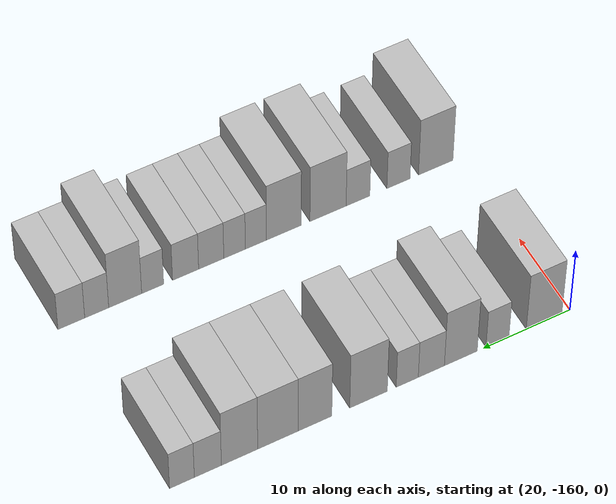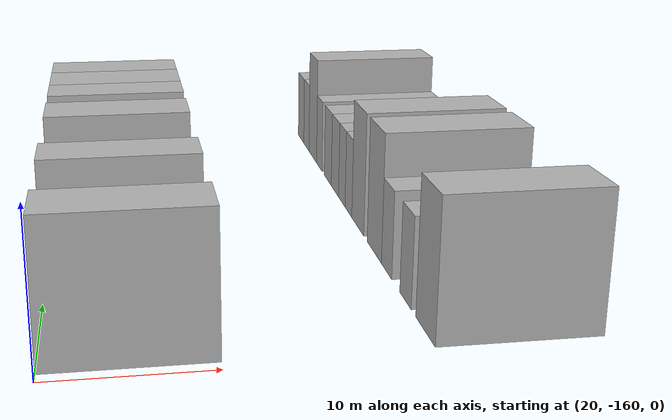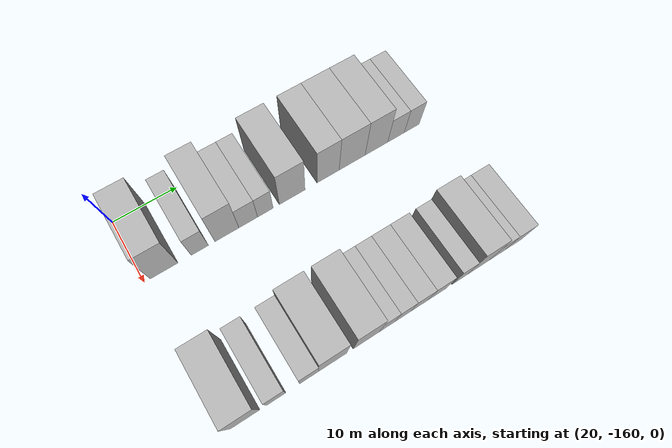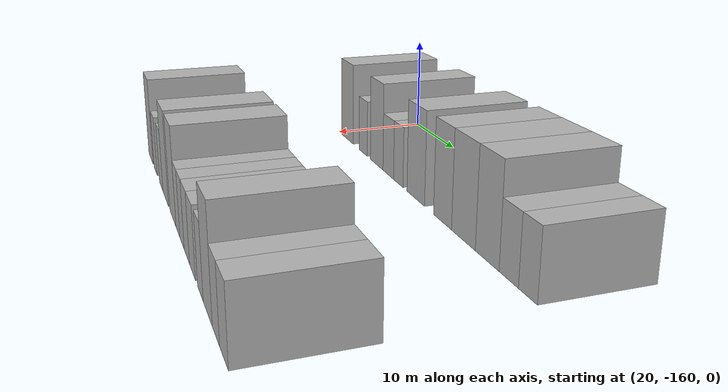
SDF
<sdf version="1.6">
 <world name="default">
  <model name="building_13">
   <static>1</static>
   <pose>25.0000 -157.0162 0 0.000000 0.000000 0.000000</pose>
   <link name="link">
    <pose>0 0 4.50 0 0 0</pose>
    <collision name="collision"><geometry><box><size>10.0000 4.1309 9.0000</size></box></geometry></collision>
    <visual name="visual">
     <cast_shadows>0</cast_shadows>
     <geometry><box><size>10.0000 4.1309 9.0000</size></box></geometry>
     <material>
      <script>
       <uri>model://HANNAS_wall/materials/scripts</uri>
       <uri>model://HANNAS_wall/materials/textures</uri>
       <name>vrc/HANNAS_wall</name>
      </script>
     </material>
    </visual>
   </link>
  </model>
  <model name="building_14">
   <static>1</static>
   <pose>25.0000 -151.6285 0 0.000000 0.000000 0.000000</pose>
   <link name="link">
    <pose>0 0 3.00 0 0 0</pose>
    <collision name="collision"><geometry><box><size>10.0000 2.6447 6.0000</size></box></geometry></collision>
    <visual name="visual">
     <cast_shadows>0</cast_shadows>
     <geometry><box><size>10.0000 2.6447 6.0000</size></box></geometry>
     <material>
      <script>
       <uri>model://HANNAS_wall/materials/scripts</uri>
       <uri>model://HANNAS_wall/materials/textures</uri>
       <name>vrc/HANNAS_wall</name>
      </script>
     </material>
    </visual>
   </link>
  </model>
  <model name="building_15">
   <static>1</static>
   <pose>25.0000 -147.4297 0 0.000000 0.000000 0.000000</pose>
   <link name="link">
    <pose>0 0 4.50 0 0 0</pose>
    <collision name="collision"><geometry><box><size>10.0000 3.7528 9.0000</size></box></geometry></collision>
    <visual name="visual">
     <cast_shadows>0</cast_shadows>
     <geometry><box><size>10.0000 3.7528 9.0000</size></box></geometry>
     <material>
      <script>
       <uri>model://HANNAS_wall/materials/scripts</uri>
       <uri>model://HANNAS_wall/materials/textures</uri>
       <name>vrc/HANNAS_wall</name>
      </script>
     </material>
    </visual>
   </link>
  </model>
  <model name="building_16">
   <static>1</static>
   <pose>25.0000 -144.0700 0 0.000000 0.000000 0.000000</pose>
   <link name="link">
    <pose>0 0 3.00 0 0 0</pose>
    <collision name="collision"><geometry><box><size>10.0000 2.9665 6.0000</size></box></geometry></collision>
    <visual name="visual">
     <cast_shadows>0</cast_shadows>
     <geometry><box><size>10.0000 2.9665 6.0000</size></box></geometry>
     <material>
      <script>
       <uri>model://HANNAS_wall/materials/scripts</uri>
       <uri>model://HANNAS_wall/materials/textures</uri>
       <name>vrc/HANNAS_wall</name>
      </script>
     </material>
    </visual>
   </link>
  </model>
  <model name="building_17">
   <static>1</static>
   <pose>25.0000 -141.3345 0 0.000000 0.000000 0.000000</pose>
   <link name="link">
    <pose>0 0 3.00 0 0 0</pose>
    <collision name="collision"><geometry><box><size>10.0000 2.5046 6.0000</size></box></geometry></collision>
    <visual name="visual">
     <cast_shadows>0</cast_shadows>
     <geometry><box><size>10.0000 2.5046 6.0000</size></box></geometry>
     <material>
      <script>
       <uri>model://HANNAS_wall/materials/scripts</uri>
       <uri>model://HANNAS_wall/materials/textures</uri>
       <name>vrc/HANNAS_wall</name>
      </script>
     </material>
    </visual>
   </link>
  </model>
  <model name="building_18">
   <static>1</static>
   <pose>25.0000 -136.9713 0 0.000000 0.000000 0.000000</pose>
   <link name="link">
    <pose>0 0 4.50 0 0 0</pose>
    <collision name="collision"><geometry><box><size>10.0000 4.2218 9.0000</size></box></geometry></collision>
    <visual name="visual">
     <cast_shadows>0</cast_shadows>
     <geometry><box><size>10.0000 4.2218 9.0000</size></box></geometry>
     <material>
      <script>
       <uri>model://HANNAS_wall/materials/scripts</uri>
       <uri>model://HANNAS_wall/materials/textures</uri>
       <name>vrc/HANNAS_wall</name>
      </script>
     </material>
    </visual>
   </link>
  </model>
  <model name="building_19">
   <static>1</static>
   <pose>25.0000 -130.9918 0 0.000000 0.000000 0.000000</pose>
   <link name="link">
    <pose>0 0 4.50 0 0 0</pose>
    <collision name="collision"><geometry><box><size>10.0000 3.7371 9.0000</size></box></geometry></collision>
    <visual name="visual">
     <cast_shadows>0</cast_shadows>
     <geometry><box><size>10.0000 3.7371 9.0000</size></box></geometry>
     <material>
      <script>
       <uri>model://HANNAS_wall/materials/scripts</uri>
       <uri>model://HANNAS_wall/materials/textures</uri>
       <name>vrc/HANNAS_wall</name>
      </script>
     </material>
    </visual>
   </link>
  </model>
  <model name="building_20">
   <static>1</static>
   <pose>25.0000 -126.8824 0 0.000000 0.000000 0.000000</pose>
   <link name="link">
    <pose>0 0 4.50 0 0 0</pose>
    <collision name="collision"><geometry><box><size>10.0000 4.4817 9.0000</size></box></geometry></collision>
    <visual name="visual">
     <cast_shadows>0</cast_shadows>
     <geometry><box><size>10.0000 4.4817 9.0000</size></box></geometry>
     <material>
      <script>
       <uri>model://HANNAS_wall/materials/scripts</uri>
       <uri>model://HANNAS_wall/materials/textures</uri>
       <name>vrc/HANNAS_wall</name>
      </script>
     </material>
    </visual>
   </link>
  </model>
  <model name="building_21">
   <static>1</static>
   <pose>25.0000 -122.6475 0 0.000000 0.000000 0.000000</pose>
   <link name="link">
    <pose>0 0 4.50 0 0 0</pose>
    <collision name="collision"><geometry><box><size>10.0000 3.9882 9.0000</size></box></geometry></collision>
    <visual name="visual">
     <cast_shadows>0</cast_shadows>
     <geometry><box><size>10.0000 3.9882 9.0000</size></box></geometry>
     <material>
      <script>
       <uri>model://HANNAS_wall/materials/scripts</uri>
       <uri>model://HANNAS_wall/materials/textures</uri>
       <name>vrc/HANNAS_wall</name>
      </script>
     </material>
    </visual>
   </link>
  </model>
  <model name="building_22">
   <static>1</static>
   <pose>25.0000 -119.1737 0 0.000000 0.000000 0.000000</pose>
   <link name="link">
    <pose>0 0 3.00 0 0 0</pose>
    <collision name="collision"><geometry><box><size>10.0000 2.9594 6.0000</size></box></geometry></collision>
    <visual name="visual">
     <cast_shadows>0</cast_shadows>
     <geometry><box><size>10.0000 2.9594 6.0000</size></box></geometry>
     <material>
      <script>
       <uri>model://HANNAS_wall/materials/scripts</uri>
       <uri>model://HANNAS_wall/materials/textures</uri>
       <name>vrc/HANNAS_wall</name>
      </script>
     </material>
    </visual>
   </link>
  </model>
  <model name="building_23">
   <static>1</static>
   <pose>25.0000 -116.3464 0 0.000000 0.000000 0.000000</pose>
   <link name="link">
    <pose>0 0 3.00 0 0 0</pose>
    <collision name="collision"><geometry><box><size>10.0000 2.6951 6.0000</size></box></geometry></collision>
    <visual name="visual">
     <cast_shadows>0</cast_shadows>
     <geometry><box><size>10.0000 2.6951 6.0000</size></box></geometry>
     <material>
      <script>
       <uri>model://HANNAS_wall/materials/scripts</uri>
       <uri>model://HANNAS_wall/materials/textures</uri>
       <name>vrc/HANNAS_wall</name>
      </script>
     </material>
    </visual>
   </link>
  </model>
  <model name="building_111">
   <static>1</static>
   <pose>47.0000 -157.0116 0 0.000000 0.000000 0.000000</pose>
   <link name="link">
    <pose>0 0 4.50 0 0 0</pose>
    <collision name="collision"><geometry><box><size>10.0000 4.0821 9.0000</size></box></geometry></collision>
    <visual name="visual">
     <cast_shadows>0</cast_shadows>
     <geometry><box><size>10.0000 4.0821 9.0000</size></box></geometry>
     <material>
      <script>
       <uri>model://HANNAS_wall/materials/scripts</uri>
       <uri>model://HANNAS_wall/materials/textures</uri>
       <name>vrc/HANNAS_wall</name>
      </script>
     </material>
    </visual>
   </link>
  </model>
  <model name="building_112">
   <static>1</static>
   <pose>47.0000 -152.6086 0 0.000000 0.000000 0.000000</pose>
   <link name="link">
    <pose>0 0 3.00 0 0 0</pose>
    <collision name="collision"><geometry><box><size>10.0000 2.7238 6.0000</size></box></geometry></collision>
    <visual name="visual">
     <cast_shadows>0</cast_shadows>
     <geometry><box><size>10.0000 2.7238 6.0000</size></box></geometry>
     <material>
      <script>
       <uri>model://HANNAS_wall/materials/scripts</uri>
       <uri>model://HANNAS_wall/materials/textures</uri>
       <name>vrc/HANNAS_wall</name>
      </script>
     </material>
    </visual>
   </link>
  </model>
  <model name="building_113">
   <static>1</static>
   <pose>47.0000 -147.8594 0 0.000000 0.000000 0.000000</pose>
   <link name="link">
    <pose>0 0 3.00 0 0 0</pose>
    <collision name="collision"><geometry><box><size>10.0000 2.7747 6.0000</size></box></geometry></collision>
    <visual name="visual">
     <cast_shadows>0</cast_shadows>
     <geometry><box><size>10.0000 2.7747 6.0000</size></box></geometry>
     <material>
      <script>
       <uri>model://HANNAS_wall/materials/scripts</uri>
       <uri>model://HANNAS_wall/materials/textures</uri>
       <name>vrc/HANNAS_wall</name>
      </script>
     </material>
    </visual>
   </link>
  </model>
  <model name="building_114">
   <static>1</static>
   <pose>47.0000 -144.3681 0 0.000000 0.000000 0.000000</pose>
   <link name="link">
    <pose>0 0 4.50 0 0 0</pose>
    <collision name="collision"><geometry><box><size>10.0000 4.2079 9.0000</size></box></geometry></collision>
    <visual name="visual">
     <cast_shadows>0</cast_shadows>
     <geometry><box><size>10.0000 4.2079 9.0000</size></box></geometry>
     <material>
      <script>
       <uri>model://HANNAS_wall/materials/scripts</uri>
       <uri>model://HANNAS_wall/materials/textures</uri>
       <name>vrc/HANNAS_wall</name>
      </script>
     </material>
    </visual>
   </link>
  </model>
  <model name="building_115">
   <static>1</static>
   <pose>47.0000 -139.2565 0 0.000000 0.000000 0.000000</pose>
   <link name="link">
    <pose>0 0 4.50 0 0 0</pose>
    <collision name="collision"><geometry><box><size>10.0000 4.0152 9.0000</size></box></geometry></collision>
    <visual name="visual">
     <cast_shadows>0</cast_shadows>
     <geometry><box><size>10.0000 4.0152 9.0000</size></box></geometry>
     <material>
      <script>
       <uri>model://HANNAS_wall/materials/scripts</uri>
       <uri>model://HANNAS_wall/materials/textures</uri>
       <name>vrc/HANNAS_wall</name>
      </script>
     </material>
    </visual>
   </link>
  </model>
  <model name="building_116">
   <static>1</static>
   <pose>47.0000 -136.0410 0 0.000000 0.000000 0.000000</pose>
   <link name="link">
    <pose>0 0 3.00 0 0 0</pose>
    <collision name="collision"><geometry><box><size>10.0000 2.4158 6.0000</size></box></geometry></collision>
    <visual name="visual">
     <cast_shadows>0</cast_shadows>
     <geometry><box><size>10.0000 2.4158 6.0000</size></box></geometry>
     <material>
      <script>
       <uri>model://HANNAS_wall/materials/scripts</uri>
       <uri>model://HANNAS_wall/materials/textures</uri>
       <name>vrc/HANNAS_wall</name>
      </script>
     </material>
    </visual>
   </link>
  </model>
  <model name="building_117">
   <static>1</static>
   <pose>47.0000 -133.5976 0 0.000000 0.000000 0.000000</pose>
   <link name="link">
    <pose>0 0 3.00 0 0 0</pose>
    <collision name="collision"><geometry><box><size>10.0000 2.4709 6.0000</size></box></geometry></collision>
    <visual name="visual">
     <cast_shadows>0</cast_shadows>
     <geometry><box><size>10.0000 2.4709 6.0000</size></box></geometry>
     <material>
      <script>
       <uri>model://HANNAS_wall/materials/scripts</uri>
       <uri>model://HANNAS_wall/materials/textures</uri>
       <name>vrc/HANNAS_wall</name>
      </script>
     </material>
    </visual>
   </link>
  </model>
  <model name="building_118">
   <static>1</static>
   <pose>47.0000 -130.9275 0 0.000000 0.000000 0.000000</pose>
   <link name="link">
    <pose>0 0 3.00 0 0 0</pose>
    <collision name="collision"><geometry><box><size>10.0000 2.8692 6.0000</size></box></geometry></collision>
    <visual name="visual">
     <cast_shadows>0</cast_shadows>
     <geometry><box><size>10.0000 2.8692 6.0000</size></box></geometry>
     <material>
      <script>
       <uri>model://HANNAS_wall/materials/scripts</uri>
       <uri>model://HANNAS_wall/materials/textures</uri>
       <name>vrc/HANNAS_wall</name>
      </script>
     </material>
    </visual>
   </link>
  </model>
  <model name="building_119">
   <static>1</static>
   <pose>47.0000 -128.0132 0 0.000000 0.000000 0.000000</pose>
   <link name="link">
    <pose>0 0 3.00 0 0 0</pose>
    <collision name="collision"><geometry><box><size>10.0000 2.9593 6.0000</size></box></geometry></collision>
    <visual name="visual">
     <cast_shadows>0</cast_shadows>
     <geometry><box><size>10.0000 2.9593 6.0000</size></box></geometry>
     <material>
      <script>
       <uri>model://HANNAS_wall/materials/scripts</uri>
       <uri>model://HANNAS_wall/materials/textures</uri>
       <name>vrc/HANNAS_wall</name>
      </script>
     </material>
    </visual>
   </link>
  </model>
  <model name="building_120">
   <static>1</static>
   <pose>47.0000 -124.2927 0 0.000000 0.000000 0.000000</pose>
   <link name="link">
    <pose>0 0 3.00 0 0 0</pose>
    <collision name="collision"><geometry><box><size>10.0000 2.4817 6.0000</size></box></geometry></collision>
    <visual name="visual">
     <cast_shadows>0</cast_shadows>
     <geometry><box><size>10.0000 2.4817 6.0000</size></box></geometry>
     <material>
      <script>
       <uri>model://HANNAS_wall/materials/scripts</uri>
       <uri>model://HANNAS_wall/materials/textures</uri>
       <name>vrc/HANNAS_wall</name>
      </script>
     </material>
    </visual>
   </link>
  </model>
  <model name="building_121">
   <static>1</static>
   <pose>47.0000 -121.2032 0 0.000000 0.000000 0.000000</pose>
   <link name="link">
    <pose>0 0 4.50 0 0 0</pose>
    <collision name="collision"><geometry><box><size>10.0000 3.6973 9.0000</size></box></geometry></collision>
    <visual name="visual">
     <cast_shadows>0</cast_shadows>
     <geometry><box><size>10.0000 3.6973 9.0000</size></box></geometry>
     <material>
      <script>
       <uri>model://HANNAS_wall/materials/scripts</uri>
       <uri>model://HANNAS_wall/materials/textures</uri>
       <name>vrc/HANNAS_wall</name>
      </script>
     </material>
    </visual>
   </link>
  </model>
  <model name="building_122">
   <static>1</static>
   <pose>47.0000 -118.0149 0 0.000000 0.000000 0.000000</pose>
   <link name="link">
    <pose>0 0 3.00 0 0 0</pose>
    <collision name="collision"><geometry><box><size>10.0000 2.6792 6.0000</size></box></geometry></collision>
    <visual name="visual">
     <cast_shadows>0</cast_shadows>
     <geometry><box><size>10.0000 2.6792 6.0000</size></box></geometry>
     <material>
      <script>
       <uri>model://HANNAS_wall/materials/scripts</uri>
       <uri>model://HANNAS_wall/materials/textures</uri>
       <name>vrc/HANNAS_wall</name>
      </script>
     </material>
    </visual>
   </link>
  </model>
  <model name="building_123">
   <static>1</static>
   <pose>47.0000 -115.1852 0 0.000000 0.000000 0.000000</pose>
   <link name="link">
    <pose>0 0 3.00 0 0 0</pose>
    <collision name="collision"><geometry><box><size>10.0000 2.9802 6.0000</size></box></geometry></collision>
    <visual name="visual">
     <cast_shadows>0</cast_shadows>
     <geometry><box><size>10.0000 2.9802 6.0000</size></box></geometry>
     <material>
      <script>
       <uri>model://HANNAS_wall/materials/scripts</uri>
       <uri>model://HANNAS_wall/materials/textures</uri>
       <name>vrc/HANNAS_wall</name>
      </script>
     </material>
    </visual>
   </link>
  </model>
 </world>
</sdf>
